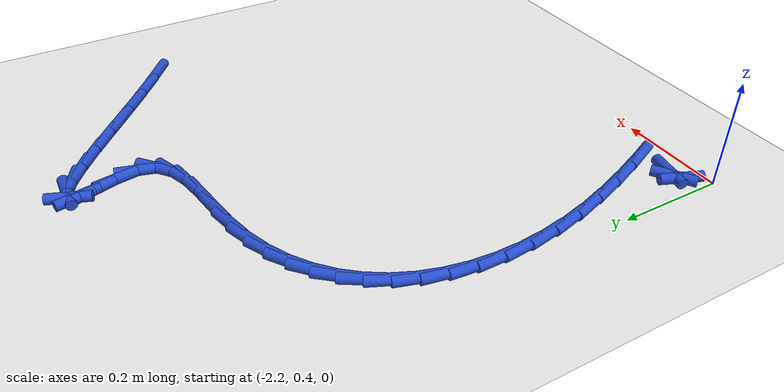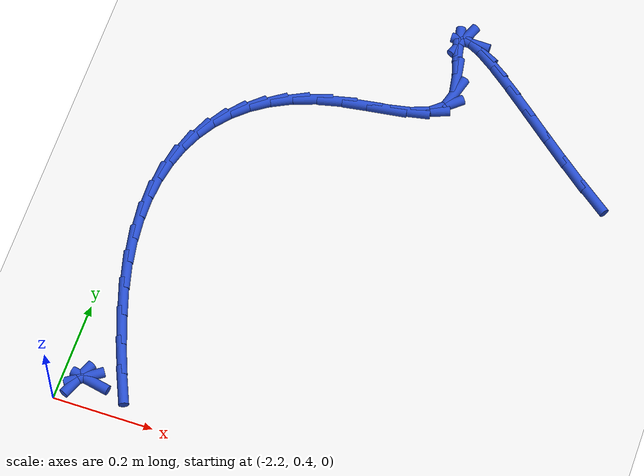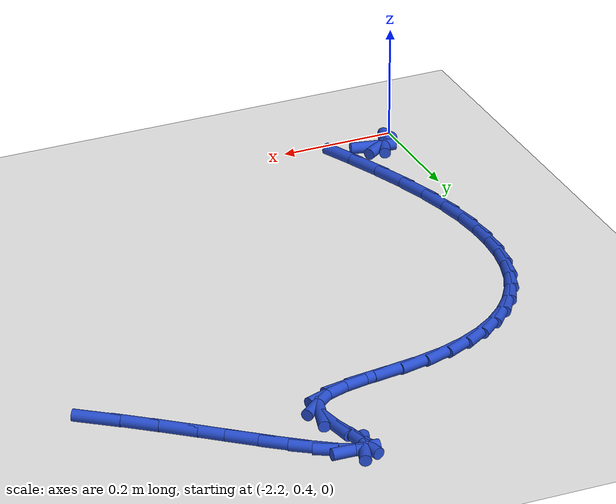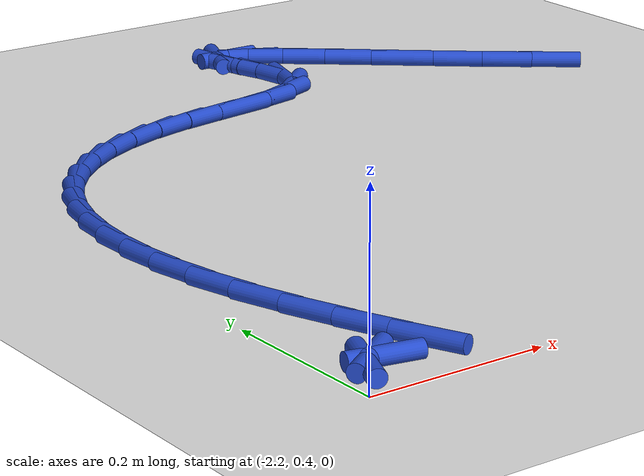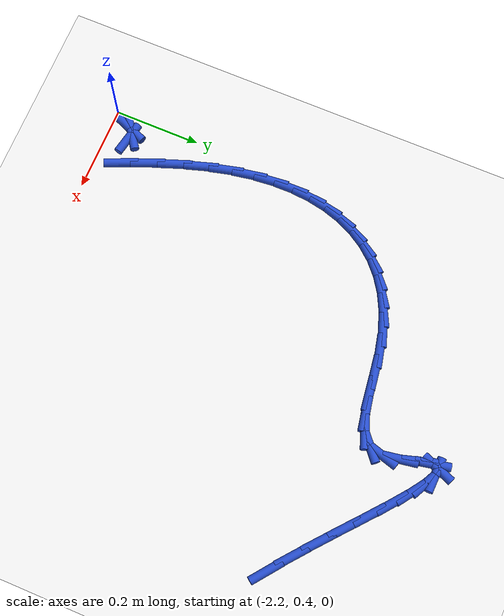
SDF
<sdf version="1.6">
 <world name="default">
  <model name="ground_plane">
   <static>1</static>
   <link name="link">
    <collision name="collision">
     <geometry><plane><normal>0 0 1</normal><size>100 100</size></plane></geometry>
     <surface><friction><ode><mu>100</mu><mu2>50</mu2></ode></friction></surface>
    </collision>
    <visual name="visual">
     <cast_shadows>0</cast_shadows>
     <geometry><plane><normal>0 0 1</normal><size>100 100</size></plane></geometry>
     <material>
      <script><uri>file://media/materials/scripts/gazebo.material</uri><name>Gazebo/WhiteGlow</name></script>
     </material>
    </visual>
   </link>
  </model>
  <model name="line">
   <link name="link_59">
    <pose>-1.3544539807699907 1.1297674367565178 0.01 0 1.57 -0.649657963590251</pose>
    <collision name="collision">
     <geometry><cylinder><radius>0.01</radius><length>0.08</length></cylinder></geometry>
    </collision>
    <visual name="visual">
     <material>
      <script><name>Gazebo/Blue</name><uri>file://media/materials/scripts/gazebo.material</uri></script>
     </material>
     <geometry><cylinder><radius>0.01</radius><length>0.08</length></cylinder></geometry>
    </visual>
   </link>
   <link name="link_60">
    <pose>-1.4043616022007324 1.1676805018302043 0.01 0 1.57 -0.6772122630782234</pose>
    <collision name="collision">
     <geometry><cylinder><radius>0.01</radius><length>0.08</length></cylinder></geometry>
    </collision>
    <visual name="visual">
     <material>
      <script><name>Gazebo/Blue</name><uri>file://media/materials/scripts/gazebo.material</uri></script>
     </material>
     <geometry><cylinder><radius>0.01</radius><length>0.08</length></cylinder></geometry>
    </visual>
   </link>
   <link name="link_61">
    <pose>-1.454314803770447 1.2078459232025367 0.01 0 1.57 -0.6924288077604496</pose>
    <collision name="collision">
     <geometry><cylinder><radius>0.01</radius><length>0.08</length></cylinder></geometry>
    </collision>
    <visual name="visual">
     <material>
      <script><name>Gazebo/Blue</name><uri>file://media/materials/scripts/gazebo.material</uri></script>
     </material>
     <geometry><cylinder><radius>0.01</radius><length>0.08</length></cylinder></geometry>
    </visual>
   </link>
   <link name="link_62">
    <pose>-1.503062936890442 1.2482789691530896 0.01 0 1.57 -0.696506769953217</pose>
    <collision name="collision">
     <geometry><cylinder><radius>0.01</radius><length>0.08</length></cylinder></geometry>
    </collision>
    <visual name="visual">
     <material>
      <script><name>Gazebo/Blue</name><uri>file://media/materials/scripts/gazebo.material</uri></script>
     </material>
     <geometry><cylinder><radius>0.01</radius><length>0.08</length></cylinder></geometry>
    </visual>
   </link>
   <link name="link_63">
    <pose>-1.5493553529720239 1.2869949079614385 0.01 0 1.57 -0.6881295943837525</pose>
    <collision name="collision">
     <geometry><cylinder><radius>0.01</radius><length>0.08</length></cylinder></geometry>
    </collision>
    <visual name="visual">
     <material>
      <script><name>Gazebo/Blue</name><uri>file://media/materials/scripts/gazebo.material</uri></script>
     </material>
     <geometry><cylinder><radius>0.01</radius><length>0.08</length></cylinder></geometry>
    </visual>
   </link>
   <link name="link_64">
    <pose>-1.5919414034264985 1.322009007907158 0.01 0 1.57 -0.6620441916939217</pose>
    <collision name="collision">
     <geometry><cylinder><radius>0.01</radius><length>0.08</length></cylinder></geometry>
    </collision>
    <visual name="visual">
     <material>
      <script><name>Gazebo/Blue</name><uri>file://media/materials/scripts/gazebo.material</uri></script>
     </material>
     <geometry><cylinder><radius>0.01</radius><length>0.08</length></cylinder></geometry>
    </visual>
   </link>
   <link name="link_65">
    <pose>-1.6295704396651718 1.351336537269822 0.01 0 1.57 -0.603454108480119</pose>
    <collision name="collision">
     <geometry><cylinder><radius>0.01</radius><length>0.08</length></cylinder></geometry>
    </collision>
    <visual name="visual">
     <material>
      <script><name>Gazebo/Blue</name><uri>file://media/materials/scripts/gazebo.material</uri></script>
     </material>
     <geometry><cylinder><radius>0.01</radius><length>0.08</length></cylinder></geometry>
    </visual>
   </link>
   <link name="link_66">
    <pose>-1.6609918130993515 1.3729927643290067 0.01 0 1.57 -0.46427044094737385</pose>
    <collision name="collision">
     <geometry><cylinder><radius>0.01</radius><length>0.08</length></cylinder></geometry>
    </collision>
    <visual name="visual">
     <material>
      <script><name>Gazebo/Blue</name><uri>file://media/materials/scripts/gazebo.material</uri></script>
     </material>
     <geometry><cylinder><radius>0.01</radius><length>0.08</length></cylinder></geometry>
    </visual>
   </link>
   <link name="link_67">
    <pose>-1.6849548751403436 1.3849929573642863 0.01 0 1.57 -0.023558305418138727</pose>
    <collision name="collision">
     <geometry><cylinder><radius>0.01</radius><length>0.08</length></cylinder></geometry>
    </collision>
    <visual name="visual">
     <material>
      <script><name>Gazebo/Blue</name><uri>file://media/materials/scripts/gazebo.material</uri></script>
     </material>
     <geometry><cylinder><radius>0.01</radius><length>0.08</length></cylinder></geometry>
    </visual>
   </link>
   <link name="link_68">
    <pose>-1.7002089771994535 1.3853523846552351 0.01 0 1.57 1.1910657350004212</pose>
    <collision name="collision">
     <geometry><cylinder><radius>0.01</radius><length>0.08</length></cylinder></geometry>
    </collision>
    <visual name="visual">
     <material>
      <script><name>Gazebo/Blue</name><uri>file://media/materials/scripts/gazebo.material</uri></script>
     </material>
     <geometry><cylinder><radius>0.01</radius><length>0.08</length></cylinder></geometry>
    </visual>
   </link>
   <link name="link_69">
    <pose>-1.7055034706879892 1.3720863144814288 0.01 0 1.57 -1.3738094278115962</pose>
    <collision name="collision">
     <geometry><cylinder><radius>0.01</radius><length>0.08</length></cylinder></geometry>
    </collision>
    <visual name="visual">
     <material>
      <script><name>Gazebo/Blue</name><uri>file://media/materials/scripts/gazebo.material</uri></script>
     </material>
     <geometry><cylinder><radius>0.01</radius><length>0.08</length></cylinder></geometry>
    </visual>
   </link>
   <link name="link_70">
    <pose>-1.6997788617533163 1.3434023202513277 0.01 0 1.57 -1.2800492155268295</pose>
    <collision name="collision">
     <geometry><cylinder><radius>0.01</radius><length>0.08</length></cylinder></geometry>
    </collision>
    <visual name="visual">
     <material>
      <script><name>Gazebo/Blue</name><uri>file://media/materials/scripts/gazebo.material</uri></script>
     </material>
     <geometry><cylinder><radius>0.01</radius><length>0.08</length></cylinder></geometry>
    </visual>
   </link>
   <link name="link_71">
    <pose>-1.6877990549691917 1.3033664197312258 0.01 0 1.57 -1.4064138033620186</pose>
    <collision name="collision">
     <geometry><cylinder><radius>0.01</radius><length>0.08</length></cylinder></geometry>
    </collision>
    <visual name="visual">
     <material>
      <script><name>Gazebo/Blue</name><uri>file://media/materials/scripts/gazebo.material</uri></script>
     </material>
     <geometry><cylinder><radius>0.01</radius><length>0.08</length></cylinder></geometry>
    </visual>
   </link>
   <link name="link_72">
    <pose>-1.6810753349352145 1.2628326172801607 0.01 0 1.57 1.2936013254377046</pose>
    <collision name="collision">
     <geometry><cylinder><radius>0.01</radius><length>0.08</length></cylinder></geometry>
    </collision>
    <visual name="visual">
     <material>
      <script><name>Gazebo/Blue</name><uri>file://media/materials/scripts/gazebo.material</uri></script>
     </material>
     <geometry><cylinder><radius>0.01</radius><length>0.08</length></cylinder></geometry>
    </visual>
   </link>
   <link name="link_73">
    <pose>-1.6899464772639958 1.2316532707385368 0.01 0 1.57 0.7038913856940222</pose>
    <collision name="collision">
     <geometry><cylinder><radius>0.01</radius><length>0.08</length></cylinder></geometry>
    </collision>
    <visual name="visual">
     <material>
      <script><name>Gazebo/Blue</name><uri>file://media/materials/scripts/gazebo.material</uri></script>
     </material>
     <geometry><cylinder><radius>0.01</radius><length>0.08</length></cylinder></geometry>
    </visual>
   </link>
   <link name="link_74">
    <pose>-1.7146514487593112 1.2106796784110245 0.01 0 1.57 0.35275751543562295</pose>
    <collision name="collision">
     <geometry><cylinder><radius>0.01</radius><length>0.08</length></cylinder></geometry>
    </collision>
    <visual name="visual">
     <material>
      <script><name>Gazebo/Blue</name><uri>file://media/materials/scripts/gazebo.material</uri></script>
     </material>
     <geometry><cylinder><radius>0.01</radius><length>0.08</length></cylinder></geometry>
    </visual>
   </link>
   <link name="link_75">
    <pose>-1.7513826894808617 1.1971568299259878 0.01 0 1.57 0.19416046898314018</pose>
    <collision name="collision">
     <geometry><cylinder><radius>0.01</radius><length>0.08</length></cylinder></geometry>
    </collision>
    <visual name="visual">
     <material>
      <script><name>Gazebo/Blue</name><uri>file://media/materials/scripts/gazebo.material</uri></script>
     </material>
     <geometry><cylinder><radius>0.01</radius><length>0.08</length></cylinder></geometry>
    </visual>
   </link>
   <link name="link_76">
    <pose>-1.7963218490262982 1.1883200983345672 0.01 0 1.57 0.13927924777305753</pose>
    <collision name="collision">
     <geometry><cylinder><radius>0.01</radius><length>0.08</length></cylinder></geometry>
    </collision>
    <visual name="visual">
     <material>
      <script><name>Gazebo/Blue</name><uri>file://media/materials/scripts/gazebo.material</uri></script>
     </material>
     <geometry><cylinder><radius>0.01</radius><length>0.08</length></cylinder></geometry>
    </visual>
   </link>
   <link name="link_77">
    <pose>-1.845650576993271 1.1814048566879034 0.01 0 1.57 0.1542437336826235</pose>
    <collision name="collision">
     <geometry><cylinder><radius>0.01</radius><length>0.08</length></cylinder></geometry>
    </collision>
    <visual name="visual">
     <material>
      <script><name>Gazebo/Blue</name><uri>file://media/materials/scripts/gazebo.material</uri></script>
     </material>
     <geometry><cylinder><radius>0.01</radius><length>0.08</length></cylinder></geometry>
    </visual>
   </link>
   <link name="link_78">
    <pose>-1.8955505229794314 1.1736464780371378 0.01 0 1.57 0.23334751588588448</pose>
    <collision name="collision">
     <geometry><cylinder><radius>0.01</radius><length>0.08</length></cylinder></geometry>
    </collision>
    <visual name="visual">
     <material>
      <script><name>Gazebo/Blue</name><uri>file://media/materials/scripts/gazebo.material</uri></script>
     </material>
     <geometry><cylinder><radius>0.01</radius><length>0.08</length></cylinder></geometry>
    </visual>
   </link>
   <link name="link_79">
    <pose>-1.942479698091653 1.1624924839200714 0.01 0 1.57 0.34392930912046815</pose>
    <collision name="collision">
     <geometry><cylinder><radius>0.01</radius><length>0.08</length></cylinder></geometry>
    </collision>
    <visual name="visual">
     <material>
      <script><name>Gazebo/Blue</name><uri>file://media/materials/scripts/gazebo.material</uri></script>
     </material>
     <geometry><cylinder><radius>0.01</radius><length>0.08</length></cylinder></geometry>
    </visual>
   </link>
   <link name="link_80">
    <pose>-1.9852289899799795 1.1471812249577076 0.01 0 1.57 0.46500537078731197</pose>
    <collision name="collision">
     <geometry><cylinder><radius>0.01</radius><length>0.08</length></cylinder></geometry>
    </collision>
    <visual name="visual">
     <material>
      <script><name>Gazebo/Blue</name><uri>file://media/materials/scripts/gazebo.material</uri></script>
     </material>
     <geometry><cylinder><radius>0.01</radius><length>0.08</length></cylinder></geometry>
    </visual>
   </link>
   <link name="link_81">
    <pose>-2.023760419288675 1.1278500702092484 0.01 0 1.57 0.5950497940695328</pose>
    <collision name="collision">
     <geometry><cylinder><radius>0.01</radius><length>0.08</length></cylinder></geometry>
    </collision>
    <visual name="visual">
     <material>
      <script><name>Gazebo/Blue</name><uri>file://media/materials/scripts/gazebo.material</uri></script>
     </material>
     <geometry><cylinder><radius>0.01</radius><length>0.08</length></cylinder></geometry>
    </visual>
   </link>
   <link name="link_82">
    <pose>-2.058044823646 1.104643157078075 0.01 0 1.57 0.7315458390155826</pose>
    <collision name="collision">
     <geometry><cylinder><radius>0.01</radius><length>0.08</length></cylinder></geometry>
    </collision>
    <visual name="visual">
     <material>
      <script><name>Gazebo/Blue</name><uri>file://media/materials/scripts/gazebo.material</uri></script>
     </material>
     <geometry><cylinder><radius>0.01</radius><length>0.08</length></cylinder></geometry>
    </visual>
   </link>
   <link name="link_83">
    <pose>-2.088053040680217 1.077704622967567 0.01 0 1.57 0.8709658067810525</pose>
    <collision name="collision">
     <geometry><cylinder><radius>0.01</radius><length>0.08</length></cylinder></geometry>
    </collision>
    <visual name="visual">
     <material>
      <script><name>Gazebo/Blue</name><uri>file://media/materials/scripts/gazebo.material</uri></script>
     </material>
     <geometry><cylinder><radius>0.01</radius><length>0.08</length></cylinder></geometry>
    </visual>
   </link>
   <link name="link_84">
    <pose>-2.113755908019586 1.0471786052811056 0.01 0 1.57 1.0092914926533725</pose>
    <collision name="collision">
     <geometry><cylinder><radius>0.01</radius><length>0.08</length></cylinder></geometry>
    </collision>
    <visual name="visual">
     <material>
      <script><name>Gazebo/Blue</name><uri>file://media/materials/scripts/gazebo.material</uri></script>
     </material>
     <geometry><cylinder><radius>0.01</radius><length>0.08</length></cylinder></geometry>
    </visual>
   </link>
   <link name="link_85">
    <pose>-2.1351242632923695 1.0132092414220704 0.01 0 1.57 1.14273720240592</pose>
    <collision name="collision">
     <geometry><cylinder><radius>0.01</radius><length>0.08</length></cylinder></geometry>
    </collision>
    <visual name="visual">
     <material>
      <script><name>Gazebo/Blue</name><uri>file://media/materials/scripts/gazebo.material</uri></script>
     </material>
     <geometry><cylinder><radius>0.01</radius><length>0.08</length></cylinder></geometry>
    </visual>
   </link>
   <link name="link_86">
    <pose>-2.1521289441268276 0.9759406687938428 0.01 0 1.57 1.2683745440490188</pose>
    <collision name="collision">
     <geometry><cylinder><radius>0.01</radius><length>0.08</length></cylinder></geometry>
    </collision>
    <visual name="visual">
     <material>
      <script><name>Gazebo/Blue</name><uri>file://media/materials/scripts/gazebo.material</uri></script>
     </material>
     <geometry><cylinder><radius>0.01</radius><length>0.08</length></cylinder></geometry>
    </visual>
   </link>
   <link name="link_87">
    <pose>-2.1647407881512235 0.9355170247998029 0.01 0 1.57 1.3844285573074098</pose>
    <collision name="collision">
     <geometry><cylinder><radius>0.01</radius><length>0.08</length></cylinder></geometry>
    </collision>
    <visual name="visual">
     <material>
      <script><name>Gazebo/Blue</name><uri>file://media/materials/scripts/gazebo.material</uri></script>
     </material>
     <geometry><cylinder><radius>0.01</radius><length>0.08</length></cylinder></geometry>
    </visual>
   </link>
   <link name="link_88">
    <pose>-2.1729306329938174 0.8920824468433309 0.01 0 1.57 1.490224431782644</pose>
    <collision name="collision">
     <geometry><cylinder><radius>0.01</radius><length>0.08</length></cylinder></geometry>
    </collision>
    <visual name="visual">
     <material>
      <script><name>Gazebo/Blue</name><uri>file://media/materials/scripts/gazebo.material</uri></script>
     </material>
     <geometry><cylinder><radius>0.01</radius><length>0.08</length></cylinder></geometry>
    </visual>
   </link>
   <link name="link_89">
    <pose>-2.1766693162828714 0.845781072327807 0.01 0 1.57 -1.555669377596942</pose>
    <collision name="collision">
     <geometry><cylinder><radius>0.01</radius><length>0.08</length></cylinder></geometry>
    </collision>
    <visual name="visual">
     <material>
      <script><name>Gazebo/Blue</name><uri>file://media/materials/scripts/gazebo.material</uri></script>
     </material>
     <geometry><cylinder><radius>0.01</radius><length>0.08</length></cylinder></geometry>
    </visual>
   </link>
   <link name="link_90">
    <pose>-2.175927675646647 0.796757038656613 0.01 0 1.57 -1.4693844292646483</pose>
    <collision name="collision">
     <geometry><cylinder><radius>0.01</radius><length>0.08</length></cylinder></geometry>
    </collision>
    <visual name="visual">
     <material>
      <script><name>Gazebo/Blue</name><uri>file://media/materials/scripts/gazebo.material</uri></script>
     </material>
     <geometry><cylinder><radius>0.01</radius><length>0.08</length></cylinder></geometry>
    </visual>
   </link>
   <link name="link_91">
    <pose>-2.1706765487134048 0.7451544832331284 0.01 0 1.57 -1.391572072525699</pose>
    <collision name="collision">
     <geometry><cylinder><radius>0.01</radius><length>0.08</length></cylinder></geometry>
    </collision>
    <visual name="visual">
     <material>
      <script><name>Gazebo/Blue</name><uri>file://media/materials/scripts/gazebo.material</uri></script>
     </material>
     <geometry><cylinder><radius>0.01</radius><length>0.08</length></cylinder></geometry>
    </visual>
   </link>
   <link name="link_92">
    <pose>-2.160886773111407 0.6911175434607337 0.01 0 1.57 -1.3212272859985577</pose>
    <collision name="collision">
     <geometry><cylinder><radius>0.01</radius><length>0.08</length></cylinder></geometry>
    </collision>
    <visual name="visual">
     <material>
      <script><name>Gazebo/Blue</name><uri>file://media/materials/scripts/gazebo.material</uri></script>
     </material>
     <geometry><cylinder><radius>0.01</radius><length>0.08</length></cylinder></geometry>
    </visual>
   </link>
   <link name="link_93">
    <pose>-2.1465302412269818 0.6347915557779219 0.01 0 1.57 -1.2609662952654943</pose>
    <collision name="collision">
     <geometry><cylinder><radius>0.01</radius><length>0.08</length></cylinder></geometry>
    </collision>
    <visual name="visual">
     <material>
      <script><name>Gazebo/Blue</name><uri>file://media/materials/scripts/gazebo.material</uri></script>
     </material>
     <geometry><cylinder><radius>0.01</radius><length>0.08</length></cylinder></geometry>
    </visual>
   </link>
   <link name="link_94">
    <pose>-2.127945000842912 0.5767380972673049 0.01 0 1.57 -1.215774851170435</pose>
    <collision name="collision">
     <geometry><cylinder><radius>0.01</radius><length>0.08</length></cylinder></geometry>
    </collision>
    <visual name="visual">
     <material>
      <script><name>Gazebo/Blue</name><uri>file://media/materials/scripts/gazebo.material</uri></script>
     </material>
     <geometry><cylinder><radius>0.01</radius><length>0.08</length></cylinder></geometry>
    </visual>
   </link>
   <link name="link_95">
    <pose>-2.10637053987989 0.5185434903170908 0.01 0 1.57 -1.1819383651164415</pose>
    <collision name="collision">
     <geometry><cylinder><radius>0.01</radius><length>0.08</length></cylinder></geometry>
    </collision>
    <visual name="visual">
     <material>
      <script><name>Gazebo/Blue</name><uri>file://media/materials/scripts/gazebo.material</uri></script>
     </material>
     <geometry><cylinder><radius>0.01</radius><length>0.08</length></cylinder></geometry>
    </visual>
   </link>
   <link name="link_96">
    <pose>-2.0831825886527433 0.46194893587918096 0.01 0 1.57 -1.1563797794052104</pose>
    <collision name="collision">
     <geometry><cylinder><radius>0.01</radius><length>0.08</length></cylinder></geometry>
    </collision>
    <visual name="visual">
     <material>
      <script><name>Gazebo/Blue</name><uri>file://media/materials/scripts/gazebo.material</uri></script>
     </material>
     <geometry><cylinder><radius>0.01</radius><length>0.08</length></cylinder></geometry>
    </visual>
   </link>
   <link name="link_110">
    <pose>-2.144597534617927 0.45139345943681497 0.01 0 1.57 -0.198252136415747</pose>
    <collision name="collision">
     <geometry><cylinder><radius>0.01</radius><length>0.08</length></cylinder></geometry>
    </collision>
    <visual name="visual">
     <material>
      <script><name>Gazebo/Blue</name><uri>file://media/materials/scripts/gazebo.material</uri></script>
     </material>
     <geometry><cylinder><radius>0.01</radius><length>0.08</length></cylinder></geometry>
    </visual>
   </link>
   <link name="link_111">
    <pose>-2.1582582301201407 0.4541377701143184 0.01 0 1.57 0.6061838269854258</pose>
    <collision name="collision">
     <geometry><cylinder><radius>0.01</radius><length>0.08</length></cylinder></geometry>
    </collision>
    <visual name="visual">
     <material>
      <script><name>Gazebo/Blue</name><uri>file://media/materials/scripts/gazebo.material</uri></script>
     </material>
     <geometry><cylinder><radius>0.01</radius><length>0.08</length></cylinder></geometry>
    </visual>
   </link>
   <link name="link_112">
    <pose>-2.168118621663974 0.4473020179921328 0.01 0 1.57 1.1779134146623915</pose>
    <collision name="collision">
     <geometry><cylinder><radius>0.01</radius><length>0.08</length></cylinder></geometry>
    </collision>
    <visual name="visual">
     <material>
      <script><name>Gazebo/Blue</name><uri>file://media/materials/scripts/gazebo.material</uri></script>
     </material>
     <geometry><cylinder><radius>0.01</radius><length>0.08</length></cylinder></geometry>
    </visual>
   </link>
  </model>
 </world>
</sdf>
